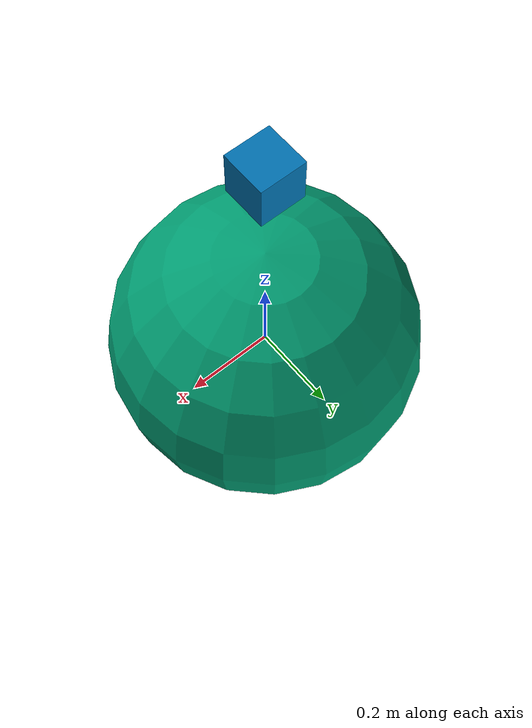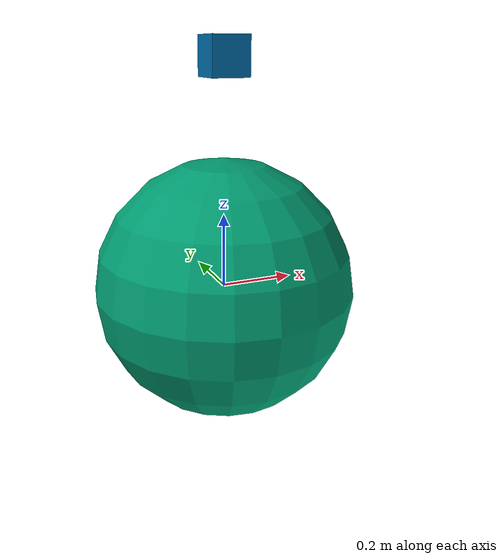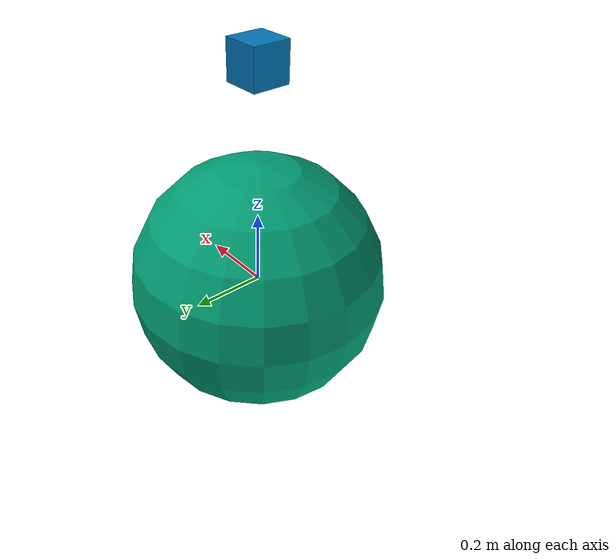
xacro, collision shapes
<?xml version="1.0" ?>
<!-- |    This document was autogenerated by xacro from /home/renzo/catkin_ws/src/bb_8_description/robots/bb_8.gazebo.xacro | -->
<!-- |    EDITING THIS FILE BY HAND IS NOT RECOMMENDED                                 | -->
<robot name="fetch" xmlns:xacro="http://www.ros.org/wiki/xacro">
  <link name="base_link">
    <inertial>
      <origin rpy="0 0 0" xyz="0.0 0.0 -0.3"/>
      <mass value="40.0"/>
      <inertia ixx="0.16" ixy="0.0" ixz="0.0" iyy="0.16" iyz="0.0" izz="0.16"/>
      <!-- inertia ixx="1.225" ixy="0.0099" ixz="0.0062" iyy="1.2853" iyz="-0.0034" izz="0.987" /-->
    </inertial>
    <collision>
      <origin rpy="0 0 0" xyz="0 0 0.0"/>
      <geometry>
        <sphere radius="0.1"/>
      </geometry>
    </collision>
    <visual>
      <origin rpy="0 0 0" xyz="0 0 0.0"/>
      <geometry>
        <sphere radius="0.1"/>
      </geometry>
      <material name="orange">
        <color rgba="0 0 .8 1"/>
      </material>
    </visual>
  </link>
  <link name="base_rotation_link">
    <inertial>
      <origin rpy="0 0 0" xyz="0.0 0.0 0."/>
      <mass value="1.0"/>
      <inertia ixx="0.004" ixy="0.0" ixz="0.0" iyy="0.004" iyz="0.0" izz="0.004"/>
    </inertial>
    <collision>
      <origin rpy="0 0 0" xyz="0 0 0.0"/>
      <geometry>
        <sphere radius="0.1"/>
        <!-- box size="0.1 0.1 0.1"/-->
      </geometry>
    </collision>
    <visual>
      <origin rpy="0 0 0" xyz="0 0 0.0"/>
      <geometry>
        <sphere radius="0.1"/>
      </geometry>
      <material name="blue">
        <color rgba="0 0 .8 1"/>
      </material>
    </visual>
  </link>
  <joint name="rotation_joint" type="revolute">
    <origin rpy="0 0 0" xyz="0.0 0.0 0.0"/>
    <parent link="base_link"/>
    <child link="base_rotation_link"/>
    <axis xyz="0 0 1"/>
    <limit effort="18.85" lower="-1e+16" upper="1e+16" velocity="0.3"/>
  </joint>
  <link name="base_direction_link">
    <inertial>
      <origin rpy="0 0 0" xyz="0.0 0.0 0."/>
      <mass value="1.0"/>
      <inertia ixx="0.049" ixy="0.0" ixz="0.0" iyy="0.049" iyz="0.0" izz="0.049"/>
    </inertial>
    <collision>
      <origin rpy="0 0 0" xyz="0 0. 0."/>
      <geometry>
        <!--mesh filename="package://bb_8_description/meshes/bb8/ball_bb8/ball_bb8.dae" scale="1 1 1"/-->
        <sphere radius="0.35"/>
      </geometry>
    </collision>
    <visual>
      <origin rpy="0 0 0" xyz="0 0.0 -0.35"/>
      <geometry>
        <mesh filename="package://bb_8_description/meshes/bb8/ball_bb8/ball.dae" scale="1 1 1"/>
        <!-- sphere radius="0.5"/ -->
      </geometry>
    </visual>
  </link>
  <joint name="direction_joint" type="continuous">
    <origin rpy="0 0 0" xyz="0.0 0.0 0."/>
    <parent link="base_rotation_link"/>
    <child link="base_direction_link"/>
    <axis xyz="1 0 0"/>
    <limit effort="18.85" velocity="27.4"/>
  </joint>
  <link name="head_link">
    <inertial>
      <origin rpy="0 0 0" xyz="0.0 0.0 0.0"/>
      <mass value="0.5"/>
      <inertia ixx="0.008" ixy="0.0" ixz="0.0" iyy="0.008" iyz="0.0" izz="0.008"/>
    </inertial>
    <collision>
      <origin rpy="1.56 0 0" xyz="0 -0.0 -0."/>
      <geometry>
        <sphere radius="0.2"/>
        <!-- mesh filename="package://bb_8_description/meshes/bb8/head_bb8/head_bb8.dae" scale="1 1 1"/-->
      </geometry>
    </collision>
    <visual>
      <origin rpy="0 0 3.14" xyz="0 0.0 -0.35"/>
      <geometry>
        <mesh filename="package://bb_8_description/meshes/bb8/head_bb8/head.dae" scale="1 1 1"/>
        <!-- sphere radius="0.2"/ -->
      </geometry>
    </visual>
  </link>
  <joint name="head_joint" type="revolute">
    <origin rpy="0 0 0" xyz="0.0 0.0 0."/>
    <parent link="base_rotation_link"/>
    <child link="head_link"/>
    <axis xyz="0 0 1"/>
    <limit effort="0.10" lower="-1e+16" upper="1e+16" velocity="0.1"/>
  </joint>
  <!-- Camera -->
  <link name="camera_link">
    <collision>
      <origin rpy="0 0 0" xyz="0 0 0"/>
      <geometry>
        <box size="0.1 0.1 0.1"/>
      </geometry>
    </collision>
    <inertial>
      <mass value="1e-5"/>
      <origin rpy="0 0 0" xyz="0 0 0"/>
      <inertia ixx="1e-6" ixy="0" ixz="0" iyy="1e-6" iyz="0" izz="1e-6"/>
    </inertial>
  </link>
  <joint name="camera_joint" type="fixed">
    <axis xyz="0 1 0"/>
    <origin rpy="0 0 1.57" xyz="0. 0 0.6"/>
    <parent link="head_link"/>
    <child link="camera_link"/>
  </joint>
  <!-- Base is modeled as a big tub sitting on floor, with two wheels -->
  <gazebo reference="base_link">
    <kp>100000000.0</kp>
    <kd>10.0</kd>
    <mu1>0.1</mu1>
    <mu2>0.1</mu2>
    <fdir1>1 0 0</fdir1>
    <maxVel>10.0</maxVel>
    <minDepth>0.0005</minDepth>
  </gazebo>
  <gazebo reference="base_rotation_link">
    <kp>100000000.0</kp>
    <kd>10.0</kd>
    <mu1>10</mu1>
    <mu2>10</mu2>
    <fdir1>1 0 0</fdir1>
    <maxVel>1.0</maxVel>
    <minDepth>0.0005</minDepth>
  </gazebo>
  <gazebo reference="base_direction_link">
    <kp>1000000.0</kp>
    <kd>1000.0</kd>
    <mu1>1000</mu1>
    <mu2>1000</mu2>
    <fdir1>1 0 0</fdir1>
    <maxVel>0.01</maxVel>
    <minDepth>0.0005</minDepth>
  </gazebo>
  <gazebo reference="head_support_link">
    <kp>500000.0</kp>
    <kd>10.0</kd>
    <mu1>10</mu1>
    <mu2>10</mu2>
    <fdir1>1 0 0</fdir1>
    <maxVel>1.0</maxVel>
    <minDepth>0.003</minDepth>
  </gazebo>
  <gazebo reference="head_link">
    <kp>1000000.0</kp>
    <kd>10.0</kd>
    <mu1>10</mu1>
    <mu2>10</mu2>
    <fdir1>1 0 0</fdir1>
    <maxVel>1.0</maxVel>
    <minDepth>0.003</minDepth>
  </gazebo>
  <gazebo reference="rotation_joint">
    <implicitSpringDamper>1</implicitSpringDamper>
  </gazebo>
  <gazebo reference="direction_joint">
    <implicitSpringDamper>1</implicitSpringDamper>
  </gazebo>
  <gazebo reference="head_joint">
    <implicitSpringDamper>1</implicitSpringDamper>
  </gazebo>
  <gazebo reference="camera_link">
    <mu1>0.2</mu1>
    <mu2>0.2</mu2>
  </gazebo>
  <gazebo>
    <plugin filename="libgazebo_bb_8_controller.so" name="bb_8_gazebo_plugin">
      <alwaysOn>true</alwaysOn>
      <updateRate>30</updateRate>
      <leftJoint>direction_joint</leftJoint>
      <rightJoint>rotation_joint</rightJoint>
      <headJoint>head_joint</headJoint>
      <wheelSeparation>0.5380</wheelSeparation>
      <wheelDiameter>0.186</wheelDiameter>
      <torque>60</torque>
      <commandTopic>cmd_vel</commandTopic>
      <odometryTopic>odom</odometryTopic>
      <odometryFrame>odom</odometryFrame>
      <robotBaseFrame>base_link</robotBaseFrame>
    </plugin>
  </gazebo>
  <!-- camera -->
  <gazebo reference="camera_link">
    <sensor name="camera1" type="camera">
      <update_rate>30.0</update_rate>
      <camera name="head">
        <horizontal_fov>1.3962634</horizontal_fov>
        <image>
          <width>800</width>
          <height>800</height>
          <format>R8G8B8</format>
        </image>
        <clip>
          <near>0.02</near>
          <far>300</far>
        </clip>
        <noise>
          <type>gaussian</type>
          <stddev>0.007</stddev>
        </noise>
      </camera>
      <plugin filename="libgazebo_ros_camera.so" name="camera_controller">
        <alwaysOn>true</alwaysOn>
        <updateRate>0.0</updateRate>
        <cameraName>bb8/camera1</cameraName>
        <imageTopicName>image_raw</imageTopicName>
        <cameraInfoTopicName>camera_info</cameraInfoTopicName>
        <frameName>camera_link</frameName>
        <hackBaseline>0.07</hackBaseline>
        <distortionK1>0.0</distortionK1>
        <distortionK2>0.0</distortionK2>
        <distortionK3>0.0</distortionK3>
        <distortionT1>0.0</distortionT1>
        <distortionT2>0.0</distortionT2>
      </plugin>
    </sensor>
  </gazebo>
  <!-- imu -->
  <gazebo>
    <plugin filename="libgazebo_ros_imu.so" name="gazebo_ros_imu_controller">
      <robotNamespace>/bb8/</robotNamespace>
      <topicName>imu/data</topicName>
      <serviceName>imu/service</serviceName>
      <bodyName>base_link</bodyName>
      <gaussianNoise>0</gaussianNoise>
      <rpyOffsets>0 0 0</rpyOffsets>
      <updateRate>50.0</updateRate>
      <alwaysOn>true</alwaysOn>
      <gaussianNoise>0</gaussianNoise>
    </plugin>
  </gazebo>
</robot>
